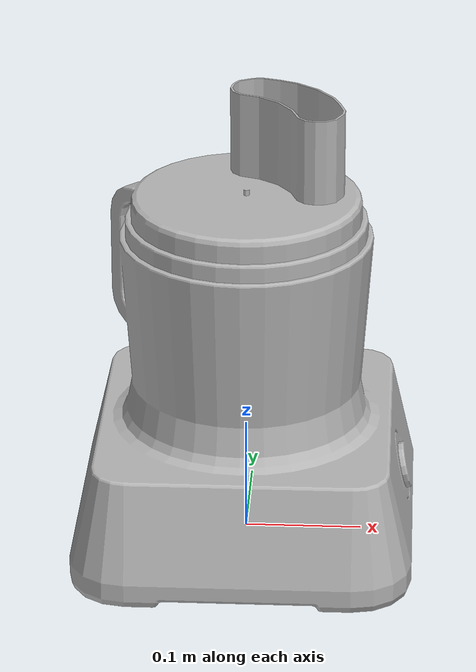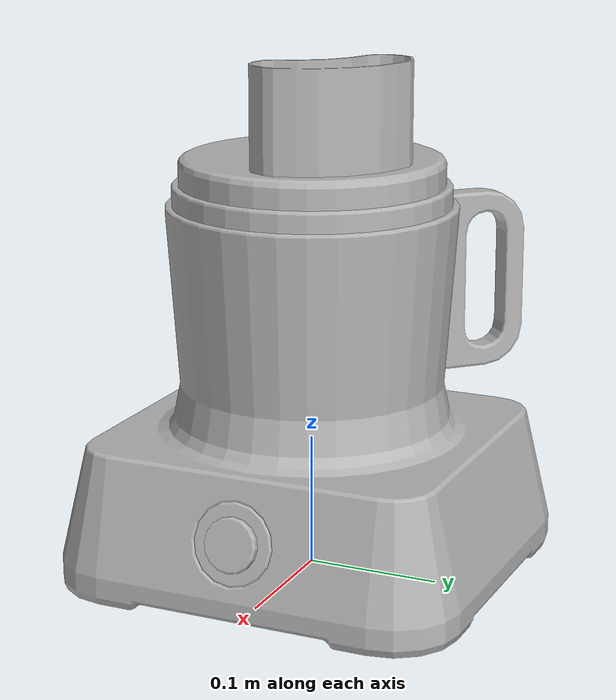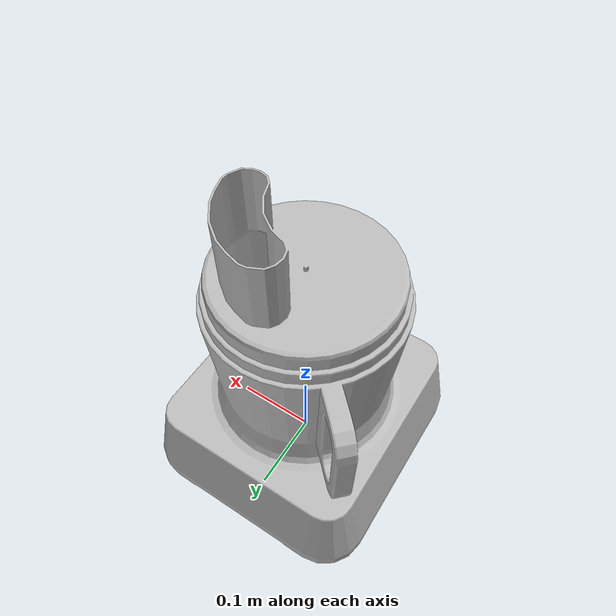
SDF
<?xml version='1.0'?>
<sdf version='1.4'>
  <model name='220'>
    <pose>0 0 0 0 0 0</pose>
    <static>true</static>
    <link name='link'>
      <collision name='collision'>
        <pose>0 0 0 0 0 0</pose>
        <geometry>
          <box>
            <size>0.29 0.31 2</size>
          </box>
        </geometry>
      </collision>
      <visual name='visual'>
        <pose>0 0 0 0 0 0</pose>
        <geometry>
          <mesh><uri>model://220/220.dae</uri></mesh>
        </geometry>
      </visual>
    </link>
  </model>
</sdf>
